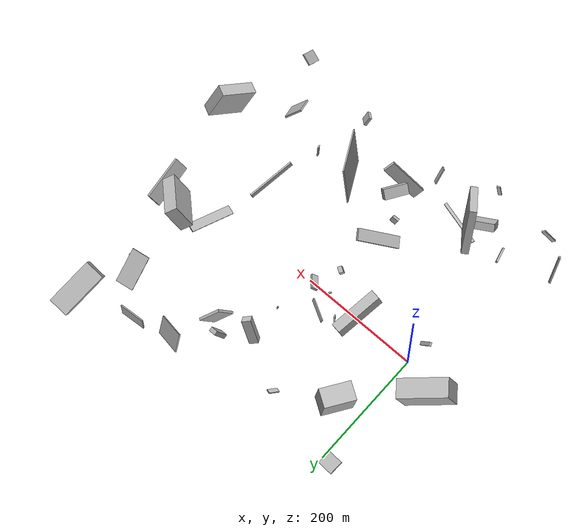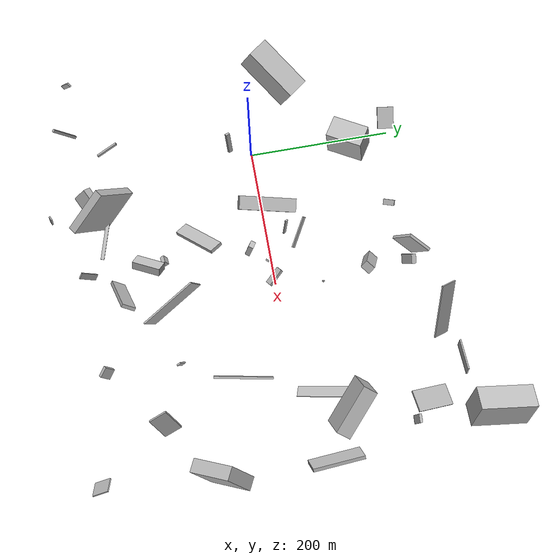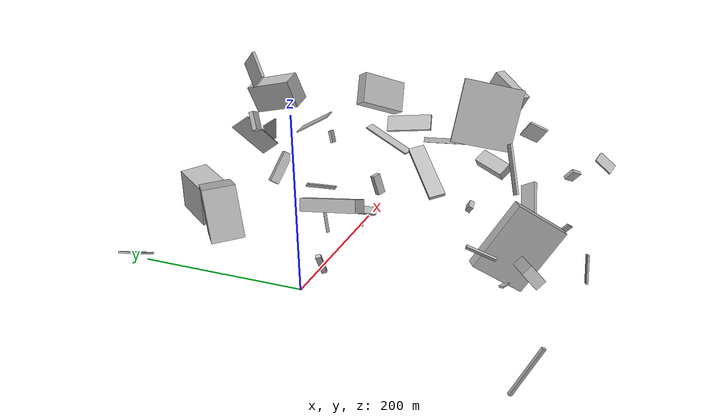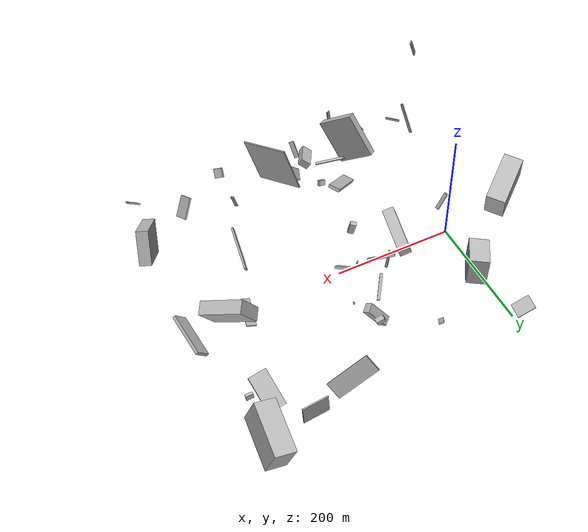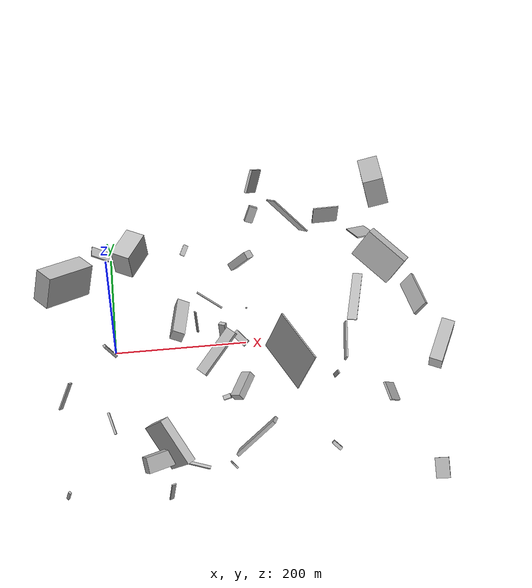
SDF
<sdf version="1.6">
 <world name="default">
  <scene>
   <sky><clouds><speed>12</speed></clouds></sky>
   <ambient>0.4 0.4 0.4 1</ambient>
   <background>0.7 0.7 0.7 1</background>
   <shadows>1</shadows>
  </scene>
  <gravity>0 0 -9.8066</gravity>
  <magnetic_field>6e-06 2.3e-05 -4.2e-05</magnetic_field>
  <physics default="0" name="default_physics" type="ode">
   <ode>
    <solver>
     <type>quick</type>
     <iters>10</iters>
     <sor>1.0</sor>
     <use_dynamic_moi_rescaling>0</use_dynamic_moi_rescaling>
    </solver>
    <constraints>
     <cfm>0</cfm>
     <erp>0.2</erp>
     <contact_max_correcting_vel>100</contact_max_correcting_vel>
     <contact_surface_layer>0.001</contact_surface_layer>
    </constraints>
   </ode>
   <max_step_size>0.004</max_step_size>
   <real_time_factor>1</real_time_factor>
   <real_time_update_rate>250</real_time_update_rate>
  </physics>
  <light name="sun" type="directional">
   <pose>0 0 10 0 0 0</pose>
   <diffuse>0.8 0.8 0.8 1</diffuse>
   <specular>0.2 0.2 0.2 1</specular>
   <attenuation>
    <range>1000</range>
    <constant>0.9</constant>
    <linear>0.01</linear>
    <quadratic>0.001</quadratic>
   </attenuation>
   <direction>-0.5 0.1 -0.9</direction>
  </light>
  <model name="building_1">
   <static>0</static>
   <pose>170.17808967391696 -164.17889403963477 99.85021864337664 -0.9699248671834668 0.17157899448829345 -2.081340092992933</pose>
   <link name="link">
    <gravity>0</gravity>
    <pose>0 0 8.5 0 0 0</pose>
    <collision name="collision"><geometry><box><size>40 11 17</size></box></geometry></collision>
    <visual name="visual">
     <cast_shadows>0</cast_shadows>
     <geometry><box><size>40 11 17</size></box></geometry>
     <material>
      <script>
       <uri>model://HANNAS_wall/materials/scripts</uri>
       <uri>model://HANNAS_wall/materials/textures</uri>
       <name>vrc/HANNAS_wall</name>
      </script>
     </material>
    </visual>
   </link>
  </model>
  <model name="building_2">
   <static>0</static>
   <pose>148.51691590783452 41.00295063905562 59.226158149658104 2.624940190988518 -0.35409425973143654 2.5988416159265015</pose>
   <link name="link">
    <gravity>0</gravity>
    <pose>0 0 2.5 0 0 0</pose>
    <collision name="collision"><geometry><box><size>45 2 5</size></box></geometry></collision>
    <visual name="visual">
     <cast_shadows>0</cast_shadows>
     <geometry><box><size>45 2 5</size></box></geometry>
     <material>
      <script>
       <uri>model://HANNAS_wall/materials/scripts</uri>
       <uri>model://HANNAS_wall/materials/textures</uri>
       <name>vrc/HANNAS_wall</name>
      </script>
     </material>
    </visual>
   </link>
  </model>
  <model name="building_3">
   <static>0</static>
   <pose>-6.425527506317238 -32.92822179165137 42.73592806808628 1.972225149325506 -1.044156773906515 -3.0772349591853807</pose>
   <link name="link">
    <gravity>0</gravity>
    <pose>0 0 3.0 0 0 0</pose>
    <collision name="collision"><geometry><box><size>31 4 6</size></box></geometry></collision>
    <visual name="visual">
     <cast_shadows>0</cast_shadows>
     <geometry><box><size>31 4 6</size></box></geometry>
     <material>
      <script>
       <uri>model://HANNAS_wall/materials/scripts</uri>
       <uri>model://HANNAS_wall/materials/textures</uri>
       <name>vrc/HANNAS_wall</name>
      </script>
     </material>
    </visual>
   </link>
  </model>
  <model name="building_4">
   <static>0</static>
   <pose>148.2173559575422 -95.01614224157198 94.37633259661345 0.5370458510080617 -0.1692552198146572 -0.9512607982273048</pose>
   <link name="link">
    <gravity>0</gravity>
    <pose>0 0 2.5 0 0 0</pose>
    <collision name="collision"><geometry><box><size>19 74 5</size></box></geometry></collision>
    <visual name="visual">
     <cast_shadows>0</cast_shadows>
     <geometry><box><size>19 74 5</size></box></geometry>
     <material>
      <script>
       <uri>model://HANNAS_wall/materials/scripts</uri>
       <uri>model://HANNAS_wall/materials/textures</uri>
       <name>vrc/HANNAS_wall</name>
      </script>
     </material>
    </visual>
   </link>
  </model>
  <model name="building_5">
   <static>0</static>
   <pose>393.72999964874407 175.7764270277453 44.909725601261734 1.5846640292142362 -1.0614964373111417 1.712618637746263</pose>
   <link name="link">
    <gravity>0</gravity>
    <pose>0 0 15.0 0 0 0</pose>
    <collision name="collision"><geometry><box><size>2 58 30</size></box></geometry></collision>
    <visual name="visual">
     <cast_shadows>0</cast_shadows>
     <geometry><box><size>2 58 30</size></box></geometry>
     <material>
      <script>
       <uri>model://HANNAS_wall/materials/scripts</uri>
       <uri>model://HANNAS_wall/materials/textures</uri>
       <name>vrc/HANNAS_wall</name>
      </script>
     </material>
    </visual>
   </link>
  </model>
  <model name="building_6">
   <static>0</static>
   <pose>461.8104991455392 -113.02302802775993 98.61696225390217 1.6901556873483727 1.0508719697796698 1.215231484926582</pose>
   <link name="link">
    <gravity>0</gravity>
    <pose>0 0 9.5 0 0 0</pose>
    <collision name="collision"><geometry><box><size>55 61 19</size></box></geometry></collision>
    <visual name="visual">
     <cast_shadows>0</cast_shadows>
     <geometry><box><size>55 61 19</size></box></geometry>
     <material>
      <script>
       <uri>model://HANNAS_wall/materials/scripts</uri>
       <uri>model://HANNAS_wall/materials/textures</uri>
       <name>vrc/HANNAS_wall</name>
      </script>
     </material>
    </visual>
   </link>
  </model>
  <model name="building_7">
   <static>0</static>
   <pose>438.18057349799705 42.52447439719562 89.58710611257833 0.8629983632014545 0.9804007674821256 -2.9373720727310535</pose>
   <link name="link">
    <gravity>0</gravity>
    <pose>0 0 35.0 0 0 0</pose>
    <collision name="collision"><geometry><box><size>47 21 70</size></box></geometry></collision>
    <visual name="visual">
     <cast_shadows>0</cast_shadows>
     <geometry><box><size>47 21 70</size></box></geometry>
     <material>
      <script>
       <uri>model://HANNAS_wall/materials/scripts</uri>
       <uri>model://HANNAS_wall/materials/textures</uri>
       <name>vrc/HANNAS_wall</name>
      </script>
     </material>
    </visual>
   </link>
  </model>
  <model name="building_8">
   <static>0</static>
   <pose>49.15792398333018 -233.19781182196672 37.15549376411426 0.8567748484179041 0.21108821091896438 0.4559367369443091</pose>
   <link name="link">
    <gravity>0</gravity>
    <pose>0 0 6.5 0 0 0</pose>
    <collision name="collision"><geometry><box><size>43 23 13</size></box></geometry></collision>
    <visual name="visual">
     <cast_shadows>0</cast_shadows>
     <geometry><box><size>43 23 13</size></box></geometry>
     <material>
      <script>
       <uri>model://HANNAS_wall/materials/scripts</uri>
       <uri>model://HANNAS_wall/materials/textures</uri>
       <name>vrc/HANNAS_wall</name>
      </script>
     </material>
    </visual>
   </link>
  </model>
  <model name="building_9">
   <static>0</static>
   <pose>183.5782554346455 9.73818727340883 14.967704273441909 1.926490807936384 -0.6084920356418032 0.5133144885653762</pose>
   <link name="link">
    <gravity>0</gravity>
    <pose>0 0 13.0 0 0 0</pose>
    <collision name="collision"><geometry><box><size>11 4 26</size></box></geometry></collision>
    <visual name="visual">
     <cast_shadows>0</cast_shadows>
     <geometry><box><size>11 4 26</size></box></geometry>
     <material>
      <script>
       <uri>model://HANNAS_wall/materials/scripts</uri>
       <uri>model://HANNAS_wall/materials/textures</uri>
       <name>vrc/HANNAS_wall</name>
      </script>
     </material>
    </visual>
   </link>
  </model>
  <model name="building_10">
   <static>0</static>
   <pose>445.6438478635805 -278.54452703153 20.53166628012677 -0.4357402935030595 -0.679344689969127 1.560989178881254</pose>
   <link name="link">
    <gravity>0</gravity>
    <pose>0 0 1.0 0 0 0</pose>
    <collision name="collision"><geometry><box><size>29 20 2</size></box></geometry></collision>
    <visual name="visual">
     <cast_shadows>0</cast_shadows>
     <geometry><box><size>29 20 2</size></box></geometry>
     <material>
      <script>
       <uri>model://HANNAS_wall/materials/scripts</uri>
       <uri>model://HANNAS_wall/materials/textures</uri>
       <name>vrc/HANNAS_wall</name>
      </script>
     </material>
    </visual>
   </link>
  </model>
  <model name="building_11">
   <static>0</static>
   <pose>154.3909664180761 -244.7431735440831 29.620747591066277 0.5168313886469323 0.5681603476756699 -0.6869035084104163</pose>
   <link name="link">
    <gravity>0</gravity>
    <pose>0 0 14.5 0 0 0</pose>
    <collision name="collision"><geometry><box><size>9 2 29</size></box></geometry></collision>
    <visual name="visual">
     <cast_shadows>0</cast_shadows>
     <geometry><box><size>9 2 29</size></box></geometry>
     <material>
      <script>
       <uri>model://HANNAS_wall/materials/scripts</uri>
       <uri>model://HANNAS_wall/materials/textures</uri>
       <name>vrc/HANNAS_wall</name>
      </script>
     </material>
    </visual>
   </link>
  </model>
  <model name="building_12">
   <static>0</static>
   <pose>127.41307805827165 26.04449992210164 26.666971213290566 3.0039182669581885 -1.459905690673835 2.240147541152136</pose>
   <link name="link">
    <gravity>0</gravity>
    <pose>0 0 2.0 0 0 0</pose>
    <collision name="collision"><geometry><box><size>42 2 4</size></box></geometry></collision>
    <visual name="visual">
     <cast_shadows>0</cast_shadows>
     <geometry><box><size>42 2 4</size></box></geometry>
     <material>
      <script>
       <uri>model://HANNAS_wall/materials/scripts</uri>
       <uri>model://HANNAS_wall/materials/textures</uri>
       <name>vrc/HANNAS_wall</name>
      </script>
     </material>
    </visual>
   </link>
  </model>
  <model name="building_13">
   <static>0</static>
   <pose>364.6976316180385 1.8040501631599781 30.90909630973915 -0.2681262965466402 1.2019624559254958 1.017696192474908</pose>
   <link name="link">
    <gravity>0</gravity>
    <pose>0 0 39.0 0 0 0</pose>
    <collision name="collision"><geometry><box><size>2 15 78</size></box></geometry></collision>
    <visual name="visual">
     <cast_shadows>0</cast_shadows>
     <geometry><box><size>2 15 78</size></box></geometry>
     <material>
      <script>
       <uri>model://HANNAS_wall/materials/scripts</uri>
       <uri>model://HANNAS_wall/materials/textures</uri>
       <name>vrc/HANNAS_wall</name>
      </script>
     </material>
    </visual>
   </link>
  </model>
  <model name="building_14">
   <static>0</static>
   <pose>429.5554422450936 159.49631279530698 25.817143198672202 -2.8649248792046036 -0.14628424899056508 3.1007046249039125</pose>
   <link name="link">
    <gravity>0</gravity>
    <pose>0 0 10.0 0 0 0</pose>
    <collision name="collision"><geometry><box><size>12 4 20</size></box></geometry></collision>
    <visual name="visual">
     <cast_shadows>0</cast_shadows>
     <geometry><box><size>12 4 20</size></box></geometry>
     <material>
      <script>
       <uri>model://HANNAS_wall/materials/scripts</uri>
       <uri>model://HANNAS_wall/materials/textures</uri>
       <name>vrc/HANNAS_wall</name>
      </script>
     </material>
    </visual>
   </link>
  </model>
  <model name="building_15">
   <static>0</static>
   <pose>-72.00386386041191 -274.6691133687255 38.83075129508734 2.6981480921220182 0.18850268799218836 -2.492551836292653</pose>
   <link name="link">
    <gravity>0</gravity>
    <pose>0 0 29.0 0 0 0</pose>
    <collision name="collision"><geometry><box><size>3 4 58</size></box></geometry></collision>
    <visual name="visual">
     <cast_shadows>0</cast_shadows>
     <geometry><box><size>3 4 58</size></box></geometry>
     <material>
      <script>
       <uri>model://HANNAS_wall/materials/scripts</uri>
       <uri>model://HANNAS_wall/materials/textures</uri>
       <name>vrc/HANNAS_wall</name>
      </script>
     </material>
    </visual>
   </link>
  </model>
  <model name="building_16">
   <static>0</static>
   <pose>-3.9833877870564325 -214.46830667008868 80.27603002273891 0.6492558265448113 -1.0334656961353743 -2.0122364921811626</pose>
   <link name="link">
    <gravity>0</gravity>
    <pose>0 0 16.0 0 0 0</pose>
    <collision name="collision"><geometry><box><size>3 3 32</size></box></geometry></collision>
    <visual name="visual">
     <cast_shadows>0</cast_shadows>
     <geometry><box><size>3 3 32</size></box></geometry>
     <material>
      <script>
       <uri>model://HANNAS_wall/materials/scripts</uri>
       <uri>model://HANNAS_wall/materials/textures</uri>
       <name>vrc/HANNAS_wall</name>
      </script>
     </material>
    </visual>
   </link>
  </model>
  <model name="building_17">
   <static>0</static>
   <pose>208.72527950438607 126.95881388560736 45.14268691175615 0.5333257630317474 0.9099757038770835 2.7377075011023044</pose>
   <link name="link">
    <gravity>0</gravity>
    <pose>0 0 6.0 0 0 0</pose>
    <collision name="collision"><geometry><box><size>44 15 12</size></box></geometry></collision>
    <visual name="visual">
     <cast_shadows>0</cast_shadows>
     <geometry><box><size>44 15 12</size></box></geometry>
     <material>
      <script>
       <uri>model://HANNAS_wall/materials/scripts</uri>
       <uri>model://HANNAS_wall/materials/textures</uri>
       <name>vrc/HANNAS_wall</name>
      </script>
     </material>
    </visual>
   </link>
  </model>
  <model name="building_18">
   <static>0</static>
   <pose>164.31804326083744 -4.928082589872673 4.557540108444228 2.869496118631162 -0.09958748685432721 -2.3594102869504456</pose>
   <link name="link">
    <gravity>0</gravity>
    <pose>0 0 1.0 0 0 0</pose>
    <collision name="collision"><geometry><box><size>5 2 2</size></box></geometry></collision>
    <visual name="visual">
     <cast_shadows>0</cast_shadows>
     <geometry><box><size>5 2 2</size></box></geometry>
     <material>
      <script>
       <uri>model://HANNAS_wall/materials/scripts</uri>
       <uri>model://HANNAS_wall/materials/textures</uri>
       <name>vrc/HANNAS_wall</name>
      </script>
     </material>
    </visual>
   </link>
  </model>
  <model name="building_19">
   <static>0</static>
   <pose>34.3065505009773 135.17926715687918 57.95117494819612 -0.03866779976112431 -0.10579390016413956 1.0119131631334044</pose>
   <link name="link">
    <gravity>0</gravity>
    <pose>0 0 23.0 0 0 0</pose>
    <collision name="collision"><geometry><box><size>51 31 46</size></box></geometry></collision>
    <visual name="visual">
     <cast_shadows>0</cast_shadows>
     <geometry><box><size>51 31 46</size></box></geometry>
     <material>
      <script>
       <uri>model://HANNAS_wall/materials/scripts</uri>
       <uri>model://HANNAS_wall/materials/textures</uri>
       <name>vrc/HANNAS_wall</name>
      </script>
     </material>
    </visual>
   </link>
  </model>
  <model name="building_20">
   <static>0</static>
   <pose>438.42884906595 223.19878343474386 86.43290211463955 -2.3383770376761013 1.2243437012231944 -0.8127536307220049</pose>
   <link name="link">
    <gravity>0</gravity>
    <pose>0 0 40.0 0 0 0</pose>
    <collision name="collision"><geometry><box><size>47 33 80</size></box></geometry></collision>
    <visual name="visual">
     <cast_shadows>0</cast_shadows>
     <geometry><box><size>47 33 80</size></box></geometry>
     <material>
      <script>
       <uri>model://HANNAS_wall/materials/scripts</uri>
       <uri>model://HANNAS_wall/materials/textures</uri>
       <name>vrc/HANNAS_wall</name>
      </script>
     </material>
    </visual>
   </link>
  </model>
  <model name="building_21">
   <static>0</static>
   <pose>79.51474723750097 -242.52500103466505 91.32175566655056 3.0741781791262306 -0.608781762477385 2.1903554346097938</pose>
   <link name="link">
    <gravity>0</gravity>
    <pose>0 0 40.0 0 0 0</pose>
    <collision name="collision"><geometry><box><size>69 12 80</size></box></geometry></collision>
    <visual name="visual">
     <cast_shadows>0</cast_shadows>
     <geometry><box><size>69 12 80</size></box></geometry>
     <material>
      <script>
       <uri>model://HANNAS_wall/materials/scripts</uri>
       <uri>model://HANNAS_wall/materials/textures</uri>
       <name>vrc/HANNAS_wall</name>
      </script>
     </material>
    </visual>
   </link>
  </model>
  <model name="building_22">
   <static>0</static>
   <pose>358.6265383263678 233.72024562813039 37.69919034566949 1.61289893879793 0.034961831916361555 0.06544998682498175</pose>
   <link name="link">
    <gravity>0</gravity>
    <pose>0 0 1.0 0 0 0</pose>
    <collision name="collision"><geometry><box><size>42 33 2</size></box></geometry></collision>
    <visual name="visual">
     <cast_shadows>0</cast_shadows>
     <geometry><box><size>42 33 2</size></box></geometry>
     <material>
      <script>
       <uri>model://HANNAS_wall/materials/scripts</uri>
       <uri>model://HANNAS_wall/materials/textures</uri>
       <name>vrc/HANNAS_wall</name>
      </script>
     </material>
    </visual>
   </link>
  </model>
  <model name="building_23">
   <static>0</static>
   <pose>244.4679208937701 -143.95730998733012 140.5476730531505 -2.1132322229761096 -1.2844136682752383 -0.506011201024093</pose>
   <link name="link">
    <gravity>0</gravity>
    <pose>0 0 1.0 0 0 0</pose>
    <collision name="collision"><geometry><box><size>80 80 2</size></box></geometry></collision>
    <visual name="visual">
     <cast_shadows>0</cast_shadows>
     <geometry><box><size>80 80 2</size></box></geometry>
     <material>
      <script>
       <uri>model://HANNAS_wall/materials/scripts</uri>
       <uri>model://HANNAS_wall/materials/textures</uri>
       <name>vrc/HANNAS_wall</name>
      </script>
     </material>
    </visual>
   </link>
  </model>
  <model name="building_24">
   <static>0</static>
   <pose>287.83523245043864 229.4274948472201 47.695774172478174 0.910599166385184 -0.44513324703532453 0.7619286201085543</pose>
   <link name="link">
    <gravity>0</gravity>
    <pose>0 0 14.0 0 0 0</pose>
    <collision name="collision"><geometry><box><size>2 80 28</size></box></geometry></collision>
    <visual name="visual">
     <cast_shadows>0</cast_shadows>
     <geometry><box><size>2 80 28</size></box></geometry>
     <material>
      <script>
       <uri>model://HANNAS_wall/materials/scripts</uri>
       <uri>model://HANNAS_wall/materials/textures</uri>
       <name>vrc/HANNAS_wall</name>
      </script>
     </material>
    </visual>
   </link>
  </model>
  <model name="building_25">
   <static>0</static>
   <pose>-16.978988612308342 201.02130446651805 16.30632248660093 -0.17435809367920746 0.447333959955128 -0.13793879783544702</pose>
   <link name="link">
    <gravity>0</gravity>
    <pose>0 0 1.0 0 0 0</pose>
    <collision name="collision"><geometry><box><size>31 24 2</size></box></geometry></collision>
    <visual name="visual">
     <cast_shadows>0</cast_shadows>
     <geometry><box><size>31 24 2</size></box></geometry>
     <material>
      <script>
       <uri>model://HANNAS_wall/materials/scripts</uri>
       <uri>model://HANNAS_wall/materials/textures</uri>
       <name>vrc/HANNAS_wall</name>
      </script>
     </material>
    </visual>
   </link>
  </model>
  <model name="building_26">
   <static>0</static>
   <pose>106.19661930656748 45.16814553648571 49.86037595441343 1.3684886728164478 0.3355597366302472 -0.2315138006136936</pose>
   <link name="link">
    <gravity>0</gravity>
    <pose>0 0 40.0 0 0 0</pose>
    <collision name="collision"><geometry><box><size>19 16 80</size></box></geometry></collision>
    <visual name="visual">
     <cast_shadows>0</cast_shadows>
     <geometry><box><size>19 16 80</size></box></geometry>
     <material>
      <script>
       <uri>model://HANNAS_wall/materials/scripts</uri>
       <uri>model://HANNAS_wall/materials/textures</uri>
       <name>vrc/HANNAS_wall</name>
      </script>
     </material>
    </visual>
   </link>
  </model>
  <model name="building_27">
   <static>0</static>
   <pose>-37.826029046846024 68.23778755764651 107.06734996377872 -0.21906201224102428 -1.246395588122223 0.8805653869674627</pose>
   <link name="link">
    <gravity>0</gravity>
    <pose>0 0 40.0 0 0 0</pose>
    <collision name="collision"><geometry><box><size>50 31 80</size></box></geometry></collision>
    <visual name="visual">
     <cast_shadows>0</cast_shadows>
     <geometry><box><size>50 31 80</size></box></geometry>
     <material>
      <script>
       <uri>model://HANNAS_wall/materials/scripts</uri>
       <uri>model://HANNAS_wall/materials/textures</uri>
       <name>vrc/HANNAS_wall</name>
      </script>
     </material>
    </visual>
   </link>
  </model>
  <model name="building_28">
   <static>0</static>
   <pose>209.68759949930586 67.43031501544101 4.977023501554243 -1.3137323671875352 0.9198215488172081 1.739708052471303</pose>
   <link name="link">
    <gravity>0</gravity>
    <pose>0 0 1.0 0 0 0</pose>
    <collision name="collision"><geometry><box><size>4 2 2</size></box></geometry></collision>
    <visual name="visual">
     <cast_shadows>0</cast_shadows>
     <geometry><box><size>4 2 2</size></box></geometry>
     <material>
      <script>
       <uri>model://HANNAS_wall/materials/scripts</uri>
       <uri>model://HANNAS_wall/materials/textures</uri>
       <name>vrc/HANNAS_wall</name>
      </script>
     </material>
    </visual>
   </link>
  </model>
  <model name="building_29">
   <static>0</static>
   <pose>463.9047791124713 71.8596667609588 36.615152802978585 1.3944400624536533 -0.848866906084064 0.2278387497766874</pose>
   <link name="link">
    <gravity>0</gravity>
    <pose>0 0 36.5 0 0 0</pose>
    <collision name="collision"><geometry><box><size>26 5 73</size></box></geometry></collision>
    <visual name="visual">
     <cast_shadows>0</cast_shadows>
     <geometry><box><size>26 5 73</size></box></geometry>
     <material>
      <script>
       <uri>model://HANNAS_wall/materials/scripts</uri>
       <uri>model://HANNAS_wall/materials/textures</uri>
       <name>vrc/HANNAS_wall</name>
      </script>
     </material>
    </visual>
   </link>
  </model>
  <model name="building_30">
   <static>0</static>
   <pose>232.41046855532002 183.40374998909724 113.67478262752608 2.7397217287908795 -0.39854066341225053 -1.5048664412646497</pose>
   <link name="link">
    <gravity>0</gravity>
    <pose>0 0 13.0 0 0 0</pose>
    <collision name="collision"><geometry><box><size>7 13 26</size></box></geometry></collision>
    <visual name="visual">
     <cast_shadows>0</cast_shadows>
     <geometry><box><size>7 13 26</size></box></geometry>
     <material>
      <script>
       <uri>model://HANNAS_wall/materials/scripts</uri>
       <uri>model://HANNAS_wall/materials/textures</uri>
       <name>vrc/HANNAS_wall</name>
      </script>
     </material>
    </visual>
   </link>
  </model>
  <model name="building_31">
   <static>0</static>
   <pose>238.42263687460263 187.147520196308 164.09810255087208 -0.9364053912085107 0.03759891753526781 2.5498409610649775</pose>
   <link name="link">
    <gravity>0</gravity>
    <pose>0 0 18.0 0 0 0</pose>
    <collision name="collision"><geometry><box><size>4 36 36</size></box></geometry></collision>
    <visual name="visual">
     <cast_shadows>0</cast_shadows>
     <geometry><box><size>4 36 36</size></box></geometry>
     <material>
      <script>
       <uri>model://HANNAS_wall/materials/scripts</uri>
       <uri>model://HANNAS_wall/materials/textures</uri>
       <name>vrc/HANNAS_wall</name>
      </script>
     </material>
    </visual>
   </link>
  </model>
  <model name="building_32">
   <static>0</static>
   <pose>386.1442483889773 -179.59064878553158 76.00734019415081 0.9080415752702586 -0.43020433118663576 1.83558857554623</pose>
   <link name="link">
    <gravity>0</gravity>
    <pose>0 0 1.5 0 0 0</pose>
    <collision name="collision"><geometry><box><size>27 35 3</size></box></geometry></collision>
    <visual name="visual">
     <cast_shadows>0</cast_shadows>
     <geometry><box><size>27 35 3</size></box></geometry>
     <material>
      <script>
       <uri>model://HANNAS_wall/materials/scripts</uri>
       <uri>model://HANNAS_wall/materials/textures</uri>
       <name>vrc/HANNAS_wall</name>
      </script>
     </material>
    </visual>
   </link>
  </model>
  <model name="building_33">
   <static>0</static>
   <pose>64.3832190970711 -295.6364026729258 47.81254719764717 3.134302513039043 -1.408463131172218 0.4331501853621466</pose>
   <link name="link">
    <gravity>0</gravity>
    <pose>0 0 3.0 0 0 0</pose>
    <collision name="collision"><geometry><box><size>31 2 6</size></box></geometry></collision>
    <visual name="visual">
     <cast_shadows>0</cast_shadows>
     <geometry><box><size>31 2 6</size></box></geometry>
     <material>
      <script>
       <uri>model://HANNAS_wall/materials/scripts</uri>
       <uri>model://HANNAS_wall/materials/textures</uri>
       <name>vrc/HANNAS_wall</name>
      </script>
     </material>
    </visual>
   </link>
  </model>
  <model name="building_34">
   <static>0</static>
   <pose>155.50401962025583 -149.62485014190221 59.44006069719124 2.7896459245980765 -0.5119783036897482 1.8343154888680333</pose>
   <link name="link">
    <gravity>0</gravity>
    <pose>0 0 4.5 0 0 0</pose>
    <collision name="collision"><geometry><box><size>6 11 9</size></box></geometry></collision>
    <visual name="visual">
     <cast_shadows>0</cast_shadows>
     <geometry><box><size>6 11 9</size></box></geometry>
     <material>
      <script>
       <uri>model://HANNAS_wall/materials/scripts</uri>
       <uri>model://HANNAS_wall/materials/textures</uri>
       <name>vrc/HANNAS_wall</name>
      </script>
     </material>
    </visual>
   </link>
  </model>
  <model name="building_35">
   <static>0</static>
   <pose>-68.57037752884379 -240.5088130835024 179.03368263454817 0.4804443852087752 -0.0561951754733099 2.279680031191594</pose>
   <link name="link">
    <gravity>0</gravity>
    <pose>0 0 21.0 0 0 0</pose>
    <collision name="collision"><geometry><box><size>2 6 42</size></box></geometry></collision>
    <visual name="visual">
     <cast_shadows>0</cast_shadows>
     <geometry><box><size>2 6 42</size></box></geometry>
     <material>
      <script>
       <uri>model://HANNAS_wall/materials/scripts</uri>
       <uri>model://HANNAS_wall/materials/textures</uri>
       <name>vrc/HANNAS_wall</name>
      </script>
     </material>
    </visual>
   </link>
  </model>
  <model name="building_36">
   <static>0</static>
   <pose>194.71671228285095 -203.33895821465367 37.260959609915346 0.8082284379361037 -0.7651731621617047 0.2405868901134296</pose>
   <link name="link">
    <gravity>0</gravity>
    <pose>0 0 10.0 0 0 0</pose>
    <collision name="collision"><geometry><box><size>75 5 20</size></box></geometry></collision>
    <visual name="visual">
     <cast_shadows>0</cast_shadows>
     <geometry><box><size>75 5 20</size></box></geometry>
     <material>
      <script>
       <uri>model://HANNAS_wall/materials/scripts</uri>
       <uri>model://HANNAS_wall/materials/textures</uri>
       <name>vrc/HANNAS_wall</name>
      </script>
     </material>
    </visual>
   </link>
  </model>
  <model name="building_37">
   <static>0</static>
   <pose>311.07244740473953 -143.13888278813235 78.00136271508346 -0.42701057303345363 -0.06811411196442284 -2.734943618658279</pose>
   <link name="link">
    <gravity>0</gravity>
    <pose>0 0 9.0 0 0 0</pose>
    <collision name="collision"><geometry><box><size>2 6 18</size></box></geometry></collision>
    <visual name="visual">
     <cast_shadows>0</cast_shadows>
     <geometry><box><size>2 6 18</size></box></geometry>
     <material>
      <script>
       <uri>model://HANNAS_wall/materials/scripts</uri>
       <uri>model://HANNAS_wall/materials/textures</uri>
       <name>vrc/HANNAS_wall</name>
      </script>
     </material>
    </visual>
   </link>
  </model>
  <model name="building_38">
   <static>0</static>
   <pose>123.30340456246557 -234.54211678841057 9.51352929532164 0.41353978207282843 1.4240471649175235 -3.0279535206598838</pose>
   <link name="link">
    <gravity>0</gravity>
    <pose>0 0 40.0 0 0 0</pose>
    <collision name="collision"><geometry><box><size>2 5 80</size></box></geometry></collision>
    <visual name="visual">
     <cast_shadows>0</cast_shadows>
     <geometry><box><size>2 5 80</size></box></geometry>
     <material>
      <script>
       <uri>model://HANNAS_wall/materials/scripts</uri>
       <uri>model://HANNAS_wall/materials/textures</uri>
       <name>vrc/HANNAS_wall</name>
      </script>
     </material>
    </visual>
   </link>
  </model>
  <model name="building_39">
   <static>0</static>
   <pose>339.55135762435407 -67.64473907188471 66.0998524597421 -1.9671028571900118 -0.12228365361656876 -1.732858735330413</pose>
   <link name="link">
    <gravity>0</gravity>
    <pose>0 0 1.5 0 0 0</pose>
    <collision name="collision"><geometry><box><size>80 7 3</size></box></geometry></collision>
    <visual name="visual">
     <cast_shadows>0</cast_shadows>
     <geometry><box><size>80 7 3</size></box></geometry>
     <material>
      <script>
       <uri>model://HANNAS_wall/materials/scripts</uri>
       <uri>model://HANNAS_wall/materials/textures</uri>
       <name>vrc/HANNAS_wall</name>
      </script>
     </material>
    </visual>
   </link>
  </model>
  <model name="building_40">
   <static>0</static>
   <pose>158.37460278765286 -25.35434976629901 63.640656302176396 0.7113996885342014 -1.3109122829312407 1.8723204685441783</pose>
   <link name="link">
    <gravity>0</gravity>
    <pose>0 0 5.0 0 0 0</pose>
    <collision name="collision"><geometry><box><size>25 7 10</size></box></geometry></collision>
    <visual name="visual">
     <cast_shadows>0</cast_shadows>
     <geometry><box><size>25 7 10</size></box></geometry>
     <material>
      <script>
       <uri>model://HANNAS_wall/materials/scripts</uri>
       <uri>model://HANNAS_wall/materials/textures</uri>
       <name>vrc/HANNAS_wall</name>
      </script>
     </material>
    </visual>
   </link>
  </model>
  <model name="building_41">
   <static>0</static>
   <pose>115.6655506734642 178.97868789911035 35.8015785768289 2.0177052011528236 -0.5257592293808008 1.033750784238422</pose>
   <link name="link">
    <gravity>0</gravity>
    <pose>0 0 4.0 0 0 0</pose>
    <collision name="collision"><geometry><box><size>18 2 8</size></box></geometry></collision>
    <visual name="visual">
     <cast_shadows>0</cast_shadows>
     <geometry><box><size>18 2 8</size></box></geometry>
     <material>
      <script>
       <uri>model://HANNAS_wall/materials/scripts</uri>
       <uri>model://HANNAS_wall/materials/textures</uri>
       <name>vrc/HANNAS_wall</name>
      </script>
     </material>
    </visual>
   </link>
  </model>
  <model name="building_42">
   <static>0</static>
   <pose>304.4990748598294 -252.16415334571352 51.31779884435585 -1.0759855562455873 -0.5441688122320588 0.588986796150795</pose>
   <link name="link">
    <gravity>0</gravity>
    <pose>0 0 7.5 0 0 0</pose>
    <collision name="collision"><geometry><box><size>5 16 15</size></box></geometry></collision>
    <visual name="visual">
     <cast_shadows>0</cast_shadows>
     <geometry><box><size>5 16 15</size></box></geometry>
     <material>
      <script>
       <uri>model://HANNAS_wall/materials/scripts</uri>
       <uri>model://HANNAS_wall/materials/textures</uri>
       <name>vrc/HANNAS_wall</name>
      </script>
     </material>
    </visual>
   </link>
  </model>
 </world>
</sdf>
